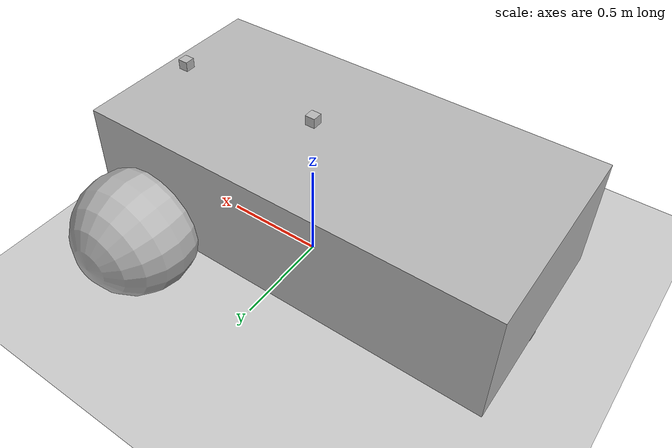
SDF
<?xml version="1.0"?>
<sdf version="1.6">
  <world name="default">

    <include>
      <uri>model://ground_plane</uri>
    </include>

    <include>
      <uri>model://sun</uri>
    </include>

    <model name='simplebot'>
      <pose>0 0 0.325 0 -0 0</pose>

      <link name='base_link'>
        <pose>-0.151427 -0 0.175 0 -0 0</pose>
        <inertial>
          <mass>1.14395</mass>
          <inertia>
            <ixx>0.126164</ixx>
            <ixy>0</ixy>
            <ixz>0</ixz>
            <iyy>0.416519</iyy>
            <iyz>0</iyz>
            <izz>0.481014</izz>
          </inertia>
        </inertial>
        <visual name='visual'>
          <geometry>
            <box>
              <size>2.01142 1 0.568726</size>
            </box>
          </geometry>
        </visual>
        <collision name='collision'>
          <geometry>
            <box>
              <size>2.01142 1 0.568726</size>
            </box>
          </geometry>
        </collision>
      </link>

      <!-- ray sensor -->
      <link name="ray_link">
        <pose>0.75 0 0.484 0 0 0</pose>
        <visual name="visual_box">
          <geometry>
            <box>
              <size>0.05 0.05 0.05</size>
            </box>
          </geometry>
        </visual>
        <collision name="collision_box">
          <geometry>
            <box>
              <size>0.05 0.05 0.05</size>
            </box>
          </geometry>
          <laser_retro>100.0</laser_retro>
        </collision>
        <sensor name="sensor_ray" type="ray">
          <ray>
            <scan>
              <horizontal>
                <samples>300</samples>
                <resolution>1.0</resolution>
                <min_angle>-0.5236</min_angle>
                <max_angle>0.5236</max_angle>
              </horizontal>
              <vertical>
                <samples>100</samples>
                <resolution>1.0</resolution>
                <min_angle>-0.5236</min_angle>
                <max_angle>0.5236</max_angle>
              </vertical>
            </scan>
            <range>
              <min>0.05</min>
              <max>50.0</max>
            </range>
          </ray>
          <always_on>true</always_on>
          <update_rate>1.0</update_rate>
          <plugin name="pc2" filename="libgazebo_ros_ray_sensor.so">
            <ros>
              <namespace>/ray</namespace>
              <argument>~/out:=pointcloud2</argument>
            </ros>
            <output_type>sensor_msgs/PointCloud2</output_type>
          </plugin>
          <plugin name="pc" filename="libgazebo_ros_ray_sensor.so">
            <ros>
              <namespace>/ray</namespace>
              <argument>~/out:=pointcloud</argument>
            </ros>
            <output_type>sensor_msgs/PointCloud</output_type>
          </plugin>
          <plugin name="laserscan" filename="libgazebo_ros_ray_sensor.so">
            <ros>
              <namespace>/ray</namespace>
              <argument>~/out:=laserscan</argument>
            </ros>
            <output_type>sensor_msgs/LaserScan</output_type>
          </plugin>
          <plugin name="range" filename="libgazebo_ros_ray_sensor.so">
            <ros>
              <namespace>/ray</namespace>
              <argument>~/out:=range</argument>
            </ros>
            <output_type>sensor_msgs/Range</output_type>
          </plugin>
        </sensor>
      </link>

      <!-- imu sensor -->
      <link name="imu_link">
        <pose>0.0 0 0.484 0 0 0</pose>
        <visual name="visual_box">
          <geometry>
            <box>
              <size>0.05 0.05 0.05</size>
            </box>
          </geometry>
        </visual>
        <collision name="collision_box">
          <geometry>
            <box>
              <size>0.05 0.05 0.05</size>
            </box>
          </geometry>
        </collision>
        <sensor name="sensor_imu" type="imu">
          <always_on>true</always_on>
          <update_rate>1.0</update_rate>
          <visualize>true</visualize>
          <topic>__default_topic__</topic>
          <plugin name="imu" filename="libgazebo_ros_imu_sensor.so">
            <topicName>imu</topicName>
            <bodyName>imu_link</bodyName>
            <updateRateHZ>10.0</updateRateHZ>
            <gaussianNoise>0.0</gaussianNoise>
            <xyzOffset>0 0 0</xyzOffset>
            <rpyOffset>0 0 0</rpyOffset>
            <frameName>imu_link</frameName>
          </plugin>
        </sensor>
      </link>

      <link name='left_wheel'>
        <pose>0.554283 0.625029 -0.025 -1.5707 0 0</pose>
        <inertial>
          <mass>2</mass>
          <inertia>
            <ixx>0.145833</ixx>
            <ixy>0</ixy>
            <ixz>0</ixz>
            <iyy>0.145833</iyy>
            <iyz>0</iyz>
            <izz>0.125</izz>
          </inertia>
        </inertial>
        <visual name='visual'>
          <geometry>
            <sphere>
              <radius>0.3</radius>
            </sphere>
          </geometry>
        </visual>
        <collision name='collision'>
          <geometry>
            <sphere>
              <radius>0.3</radius>
            </sphere>
          </geometry>
          <surface>
            <friction>
              <ode>
                <mu>1</mu>
                <mu2>1</mu2>
                <slip1>0</slip1>
                <slip2>0</slip2>
              </ode>
            </friction>
            <contact>
              <ode>
                <soft_cfm>0</soft_cfm>
                <soft_erp>0.2</soft_erp>
                <kp>1e+13</kp>
                <kd>1</kd>
                <max_vel>0.01</max_vel>
                <min_depth>0.01</min_depth>
              </ode>
            </contact>
          </surface>
        </collision>
      </link>

      <link name='right_wheel'>
        <pose>0.554282 -0.625029 -0.025 -1.5707 0 0</pose>
        <inertial>
          <mass>2</mass>
          <inertia>
            <ixx>0.145833</ixx>
            <ixy>0</ixy>
            <ixz>0</ixz>
            <iyy>0.145833</iyy>
            <iyz>0</iyz>
            <izz>0.125</izz>
          </inertia>
        </inertial>
        <visual name='visual'>
          <geometry>
            <sphere>
              <radius>0.3</radius>
            </sphere>
          </geometry>
        </visual>
        <collision name='collision'>
          <geometry>
            <sphere>
              <radius>0.3</radius>
            </sphere>
          </geometry>
          <surface>
            <friction>
              <ode>
                <mu>1</mu>
                <mu2>1</mu2>
                <slip1>0</slip1>
                <slip2>0</slip2>
              </ode>
            </friction>
            <contact>
              <ode>
                <soft_cfm>0</soft_cfm>
                <soft_erp>0.2</soft_erp>
                <kp>1e+13</kp>
                <kd>1</kd>
                <max_vel>0.01</max_vel>
                <min_depth>0.01</min_depth>
              </ode>
            </contact>
          </surface>
        </collision>
      </link>

      <link name='caster'>
        <pose>-0.957138 -0 -0.125 0 -0 0</pose>
        <inertial>
          <mass>1</mass>
          <inertia>
            <ixx>0.1</ixx>
            <ixy>0</ixy>
            <ixz>0</ixz>
            <iyy>0.1</iyy>
            <iyz>0</iyz>
            <izz>0.1</izz>
          </inertia>
        </inertial>
        <visual name='visual'>
          <geometry>
            <sphere>
              <radius>0.2</radius>
            </sphere>
          </geometry>
        </visual>
        <collision name='collision'>
          <geometry>
            <sphere>
              <radius>0.2</radius>
            </sphere>
          </geometry>
        </collision>
      </link>

      <joint name='ray_link_joint' type='fixed'>
        <parent>base_link</parent>
        <child>ray_link</child>
      </joint>

      <joint name='imu_link_joint' type='fixed'>
        <parent>base_link</parent>
        <child>imu_link</child>
      </joint>

      <joint name='left_wheel_joint' type='revolute'>
        <parent>base_link</parent>
        <child>left_wheel</child>
        <axis>
          <xyz>0 0 1</xyz>
          <limit>
            <lower>-1.79769e+308</lower>
            <upper>1.79769e+308</upper>
          </limit>
        </axis>
      </joint>

      <joint name='right_wheel_joint' type='revolute'>
        <parent>base_link</parent>
        <child>right_wheel</child>
        <axis>
          <xyz>0 0 1</xyz>
          <limit>
            <lower>-1.79769e+308</lower>
            <upper>1.79769e+308</upper>
          </limit>
        </axis>
      </joint>

      <joint name='caster_wheel' type='ball'>
        <parent>base_link</parent>
        <child>caster</child>
      </joint>

      <plugin name='diff_drive' filename='libgazebo_ros_diff_drive.so'>

        <ros>
          <namespace>/nav2</namespace>
          <argument>cmd_vel:=cmd_vel</argument>
          <argument>odom:=odom</argument>
        </ros>

        <!-- wheels -->
        <left_joint>left_wheel_joint</left_joint>
        <right_joint>right_wheel_joint</right_joint>

        <!-- kinematics -->
        <wheel_separation>1.25</wheel_separation>
        <wheel_diameter>0.6</wheel_diameter>

        <!-- limits -->
        <max_wheel_torque>20</max_wheel_torque>
        <max_wheel_acceleration>1.0</max_wheel_acceleration>

        <!-- output -->
        <publish_odom>true</publish_odom>
        <publish_odom_tf>true</publish_odom_tf>
        <publish_wheel_tf>true</publish_wheel_tf>

        <odometry_frame>odom</odometry_frame>
        <robot_base_frame>base_link</robot_base_frame>

      </plugin>

    </model>

  </world>
</sdf>
